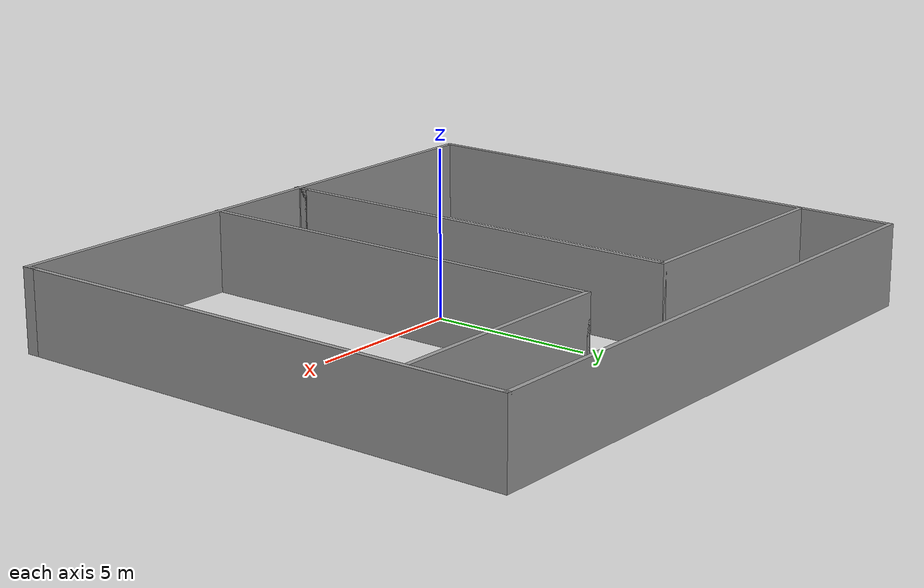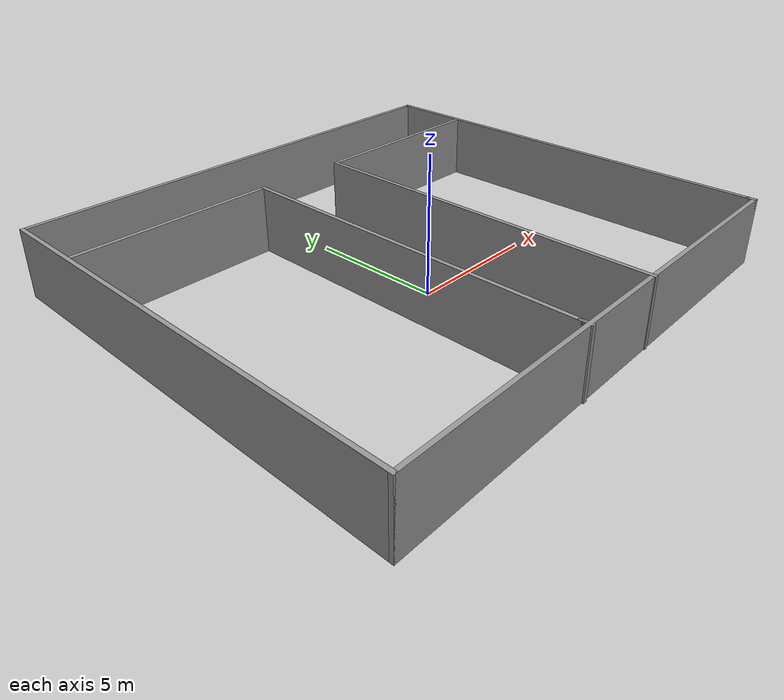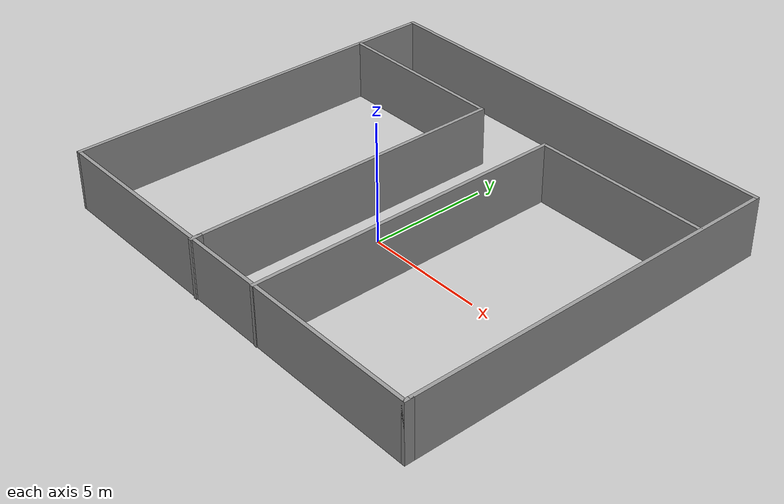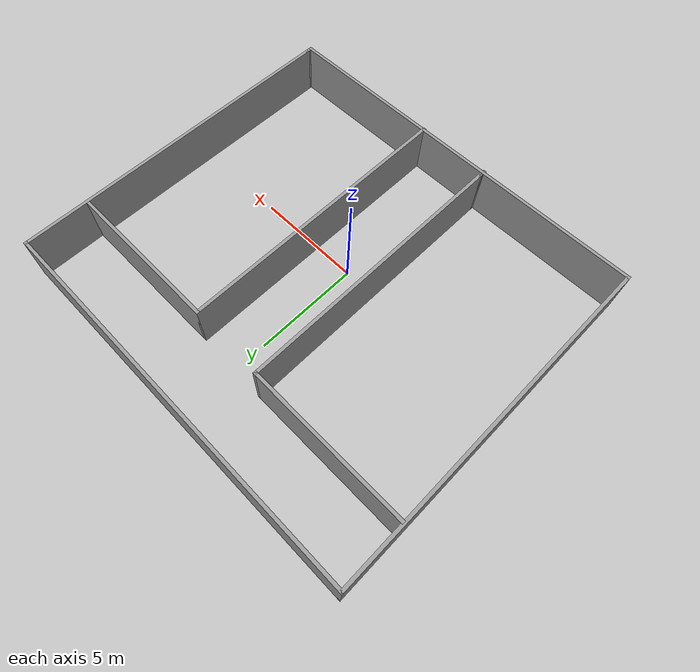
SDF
<?xml version='1.0'?>
<sdf version='1.6'>
  <model name='dang_world_1'>
    <pose frame=''>0.213479 1.29906 0 0 -0 0</pose>
    <link name='Wall_10'>
      <collision name='Wall_10_Collision'>
        <geometry>
          <box>
            <size>0.4 0.15 2.5</size>
          </box>
        </geometry>
        <pose frame=''>0 0 1.25 0 -0 0</pose>
      </collision>
      <visual name='Wall_10_Visual'>
        <pose frame=''>0 0 1.25 0 -0 0</pose>
        <geometry>
          <box>
            <size>0.4 0.15 2.5</size>
          </box>
        </geometry>
        <material>
          <script>
            <uri>file://media/materials/scripts/gazebo.material</uri>
            <name>Gazebo/Grey</name>
          </script>
          <ambient>1 1 1 1</ambient>
        </material>
        <meta>
          <layer>0</layer>
        </meta>
      </visual>
      <pose frame=''>9.175 -8.0219 0 0 -0 1.5708</pose>
    </link>
    <link name='Wall_12'>
      <collision name='Wall_12_Collision'>
        <geometry>
          <box>
            <size>7.5 0.15 2.5</size>
          </box>
        </geometry>
        <pose frame=''>0 0 1.25 0 -0 0</pose>
      </collision>
      <visual name='Wall_12_Visual'>
        <pose frame=''>0 0 1.25 0 -0 0</pose>
        <geometry>
          <box>
            <size>7.5 0.15 2.5</size>
          </box>
        </geometry>
        <material>
          <script>
            <uri>file://media/materials/scripts/gazebo.material</uri>
            <name>Gazebo/Grey</name>
          </script>
          <ambient>1 1 1 1</ambient>
        </material>
        <meta>
          <layer>0</layer>
        </meta>
      </visual>
      <pose frame=''>-5.41426 5.2469 0 0 -0 0</pose>
    </link>
    <link name='Wall_13'>
      <collision name='Wall_13_Collision'>
        <geometry>
          <box>
            <size>13.25 0.15 2.5</size>
          </box>
        </geometry>
        <pose frame=''>0 0 1.25 0 -0 0</pose>
      </collision>
      <visual name='Wall_13_Visual'>
        <pose frame=''>0 0 1.25 0 -0 0</pose>
        <geometry>
          <box>
            <size>13.25 0.15 2.5</size>
          </box>
        </geometry>
        <material>
          <script>
            <uri>file://media/materials/scripts/gazebo.material</uri>
            <name>Gazebo/Grey</name>
          </script>
          <ambient>1 1 1 1</ambient>
        </material>
        <meta>
          <layer>0</layer>
        </meta>
      </visual>
      <pose frame=''>-1.73926 -1.3031 0 0 0 -1.5708</pose>
    </link>
    <link name='Wall_14'>
      <collision name='Wall_14_Collision'>
        <geometry>
          <box>
            <size>0.25 0.15 2.5</size>
          </box>
        </geometry>
        <pose frame=''>0 0 1.25 0 -0 0</pose>
      </collision>
      <visual name='Wall_14_Visual'>
        <pose frame=''>0 0 1.25 0 -0 0</pose>
        <geometry>
          <box>
            <size>0.25 0.15 2.5</size>
          </box>
        </geometry>
        <material>
          <script>
            <uri>file://media/materials/scripts/gazebo.material</uri>
            <name>Gazebo/Grey</name>
          </script>
          <ambient>1 1 1 1</ambient>
        </material>
        <meta>
          <layer>0</layer>
        </meta>
      </visual>
      <pose frame=''>-1.73926 -7.9031 0 0 0 -1.5708</pose>
    </link>
    <link name='Wall_15'>
      <collision name='Wall_15_Collision'>
        <geometry>
          <box>
            <size>0.25 0.15 2.5</size>
          </box>
        </geometry>
        <pose frame=''>0 0 1.25 0 -0 0</pose>
      </collision>
      <visual name='Wall_15_Visual'>
        <pose frame=''>0 0 1.25 0 -0 0</pose>
        <geometry>
          <box>
            <size>0.25 0.15 2.5</size>
          </box>
        </geometry>
        <material>
          <script>
            <uri>file://media/materials/scripts/gazebo.material</uri>
            <name>Gazebo/Grey</name>
          </script>
          <ambient>1 1 1 1</ambient>
        </material>
        <meta>
          <layer>0</layer>
        </meta>
      </visual>
      <pose frame=''>-1.73926 -7.9031 0 0 -0 1.5708</pose>
    </link>
    <link name='Wall_17'>
      <collision name='Wall_17_Collision'>
        <geometry>
          <box>
            <size>0.25 0.15 2.5</size>
          </box>
        </geometry>
        <pose frame=''>0 0 1.25 0 -0 0</pose>
      </collision>
      <visual name='Wall_17_Visual'>
        <pose frame=''>0 0 1.25 0 -0 0</pose>
        <geometry>
          <box>
            <size>0.25 0.15 2.5</size>
          </box>
        </geometry>
        <material>
          <script>
            <uri>file://media/materials/scripts/gazebo.material</uri>
            <name>Gazebo/Grey</name>
          </script>
          <ambient>1 1 1 1</ambient>
        </material>
        <meta>
          <layer>0</layer>
        </meta>
      </visual>
      <pose frame=''>-1.73926 -7.9031 0 0 -0 1.5708</pose>
    </link>
    <link name='Wall_18'>
      <collision name='Wall_18_Collision'>
        <geometry>
          <box>
            <size>0.5 0.15 2.5</size>
          </box>
        </geometry>
        <pose frame=''>0 0 1.25 0 -0 0</pose>
      </collision>
      <visual name='Wall_18_Visual'>
        <pose frame=''>0 0 1.25 0 -0 0</pose>
        <geometry>
          <box>
            <size>0.5 0.15 2.5</size>
          </box>
        </geometry>
        <material>
          <script>
            <uri>file://media/materials/scripts/gazebo.material</uri>
            <name>Gazebo/Grey</name>
          </script>
          <ambient>1 1 1 1</ambient>
        </material>
        <meta>
          <layer>0</layer>
        </meta>
      </visual>
      <pose frame=''>-1.73926 -8.0281 0 0 0 -1.5708</pose>
    </link>
    <link name='Wall_20'>
      <collision name='Wall_20_Collision'>
        <geometry>
          <box>
            <size>13.5 0.15 2.5</size>
          </box>
        </geometry>
        <pose frame=''>0 0 1.25 0 -0 0</pose>
      </collision>
      <visual name='Wall_20_Visual'>
        <pose frame=''>0 0 1.25 0 -0 0</pose>
        <geometry>
          <box>
            <size>13.5 0.15 2.5</size>
          </box>
        </geometry>
        <material>
          <script>
            <uri>file://media/materials/scripts/gazebo.material</uri>
            <name>Gazebo/Grey</name>
          </script>
          <ambient>1 1 1 1</ambient>
        </material>
        <meta>
          <layer>0</layer>
        </meta>
      </visual>
      <pose frame=''>1.74568 -1.49931 0 0 -0 1.5708</pose>
    </link>
    <link name='Wall_21'>
      <collision name='Wall_21_Collision'>
        <geometry>
          <box>
            <size>7.5 0.15 2.5</size>
          </box>
        </geometry>
        <pose frame=''>0 0 1.25 0 -0 0</pose>
      </collision>
      <visual name='Wall_21_Visual'>
        <pose frame=''>0 0 1.25 0 -0 0</pose>
        <geometry>
          <box>
            <size>7.5 0.15 2.5</size>
          </box>
        </geometry>
        <material>
          <script>
            <uri>file://media/materials/scripts/gazebo.material</uri>
            <name>Gazebo/Grey</name>
          </script>
          <ambient>1 1 1 1</ambient>
        </material>
        <meta>
          <layer>0</layer>
        </meta>
      </visual>
      <pose frame=''>5.42068 5.17569 0 0 -0 0</pose>
    </link>
    <link name='Wall_5'>
      <collision name='Wall_5_Collision'>
        <geometry>
          <box>
            <size>16.5 0.15 2.5</size>
          </box>
        </geometry>
        <pose frame=''>0 0 1.25 0 -0 0</pose>
      </collision>
      <visual name='Wall_5_Visual'>
        <pose frame=''>0 0 1.25 0 -0 0</pose>
        <geometry>
          <box>
            <size>16.5 0.15 2.5</size>
          </box>
        </geometry>
        <material>
          <script>
            <uri>file://media/materials/scripts/gazebo.material</uri>
            <name>Gazebo/Grey</name>
          </script>
          <ambient>1 1 1 1</ambient>
        </material>
        <meta>
          <layer>0</layer>
        </meta>
      </visual>
      <pose frame=''>-9.175 0.028099 0 0 -0 1.5708</pose>
    </link>
    <link name='Wall_6'>
      <collision name='Wall_6_Collision'>
        <geometry>
          <box>
            <size>18.5 0.15 2.5</size>
          </box>
        </geometry>
        <pose frame=''>0 0 1.25 0 -0 0</pose>
      </collision>
      <visual name='Wall_6_Visual'>
        <pose frame=''>0 0 1.25 0 -0 0</pose>
        <geometry>
          <box>
            <size>18.5 0.15 2.5</size>
          </box>
        </geometry>
        <material>
          <script>
            <uri>file://media/materials/scripts/gazebo.material</uri>
            <name>Gazebo/Grey</name>
          </script>
          <ambient>1 1 1 1</ambient>
        </material>
        <meta>
          <layer>0</layer>
        </meta>
      </visual>
      <pose frame=''>0 8.2031 0 0 -0 0</pose>
    </link>
    <link name='Wall_7'>
      <collision name='Wall_7_Collision'>
        <geometry>
          <box>
            <size>16.25 0.15 2.5</size>
          </box>
        </geometry>
        <pose frame=''>0 0 1.25 0 -0 0</pose>
      </collision>
      <visual name='Wall_7_Visual'>
        <pose frame=''>0 0 1.25 0 -0 0</pose>
        <geometry>
          <box>
            <size>16.25 0.15 2.5</size>
          </box>
        </geometry>
        <material>
          <script>
            <uri>file://media/materials/scripts/gazebo.material</uri>
            <name>Gazebo/Grey</name>
          </script>
          <ambient>1 1 1 1</ambient>
        </material>
        <meta>
          <layer>0</layer>
        </meta>
      </visual>
      <pose frame=''>9.175 0.153099 0 0 0 -1.5708</pose>
    </link>
    <link name='Wall_9'>
      <collision name='Wall_9_Collision'>
        <geometry>
          <box>
            <size>18.5 0.15 2.5</size>
          </box>
        </geometry>
        <pose frame=''>0 0 1.25 0 -0 0</pose>
      </collision>
      <visual name='Wall_9_Visual'>
        <pose frame=''>0 0 1.25 0 -0 0</pose>
        <geometry>
          <box>
            <size>18.5 0.15 2.5</size>
          </box>
        </geometry>
        <material>
          <script>
            <uri>file://media/materials/scripts/gazebo.material</uri>
            <name>Gazebo/Grey</name>
          </script>
          <ambient>1 1 1 1</ambient>
        </material>
        <meta>
          <layer>0</layer>
        </meta>
      </visual>
      <pose frame=''>0 -8.1469 0 0 -0 0</pose>
    </link>
    <static>1</static>
  </model>
</sdf>
